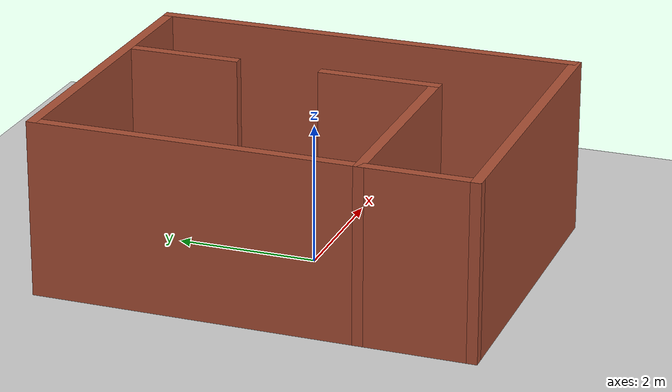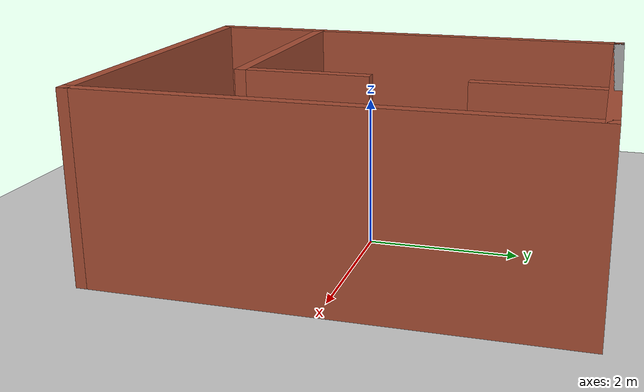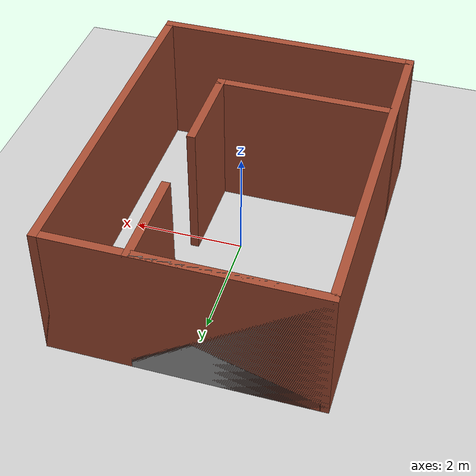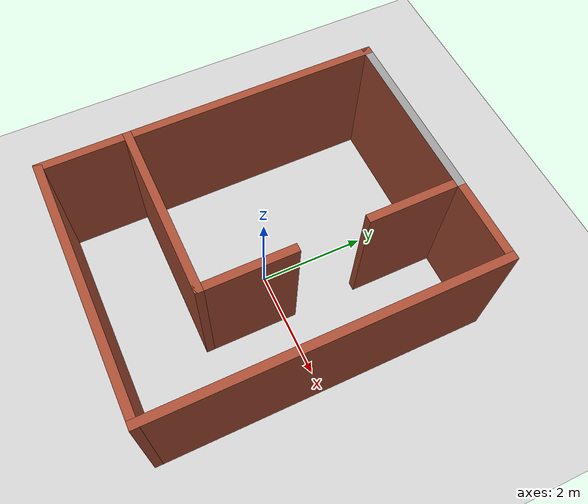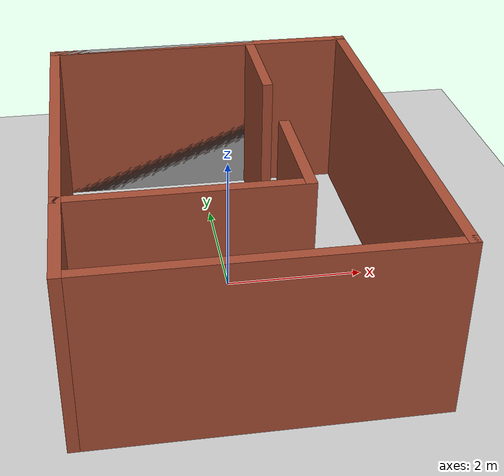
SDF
<sdf version="1.6">
 <world name="default">
  <light name="sun" type="directional">
   <pose>0 0 10 0 -0 0</pose>
   <diffuse>0.8 0.8 0.8 1</diffuse>
   <specular>0.2 0.2 0.2 1</specular>
   <attenuation>
    <range>1000</range>
    <constant>0.9</constant>
    <linear>0.01</linear>
    <quadratic>0.001</quadratic>
   </attenuation>
   <direction>-0.5 0.1 -0.9</direction>
  </light>
  <model name="ground_plane">
   <static>1</static>
   <link name="link">
    <collision name="collision">
     <geometry><plane><normal>0 0 1</normal><size>100 100</size></plane></geometry>
     <surface>
      <contact><collide_bitmask>65535</collide_bitmask></contact>
      <friction><ode><mu>100</mu><mu2>50</mu2></ode></friction>
     </surface>
    </collision>
    <visual name="visual">
     <cast_shadows>0</cast_shadows>
     <geometry><plane><normal>0 0 1</normal><size>100 100</size></plane></geometry>
     <material>
      <script><uri>file://media/materials/scripts/gazebo.material</uri><name>Gazebo/Grey</name></script>
     </material>
    </visual>
   </link>
  </model>
  <gravity>0 0 -9.8</gravity>
  <magnetic_field>6e-06 2.3e-05 -4.2e-05</magnetic_field>
  <atmosphere type="adiabatic"/>
  <physics name="default_physics" default="0" type="ode">
   <max_step_size>0.001</max_step_size>
   <real_time_factor>1</real_time_factor>
   <real_time_update_rate>1000</real_time_update_rate>
  </physics>
  <scene><ambient>0.4 0.4 0.4 1</ambient><background>0.7 0.7 0.7 1</background><shadows>1</shadows></scene>
  <audio><device>default</device></audio>
  <spherical_coordinates>
   <surface_model>EARTH_WGS84</surface_model>
   <latitude_deg>0</latitude_deg>
   <longitude_deg>0</longitude_deg>
   <elevation>0</elevation>
   <heading_deg>0</heading_deg>
  </spherical_coordinates>
  <model name="room">
   <pose>0.010185 0.045329 0 0 -0 0</pose>
   <link name="Wall_0">
    <collision name="Wall_0_Collision">
     <geometry><box><size>4.75 0.15 2.5</size></box></geometry>
     <pose>0 0 1.25 0 -0 0</pose>
    </collision>
    <visual name="Wall_0_Visual">
     <pose>0 0 1.25 0 -0 0</pose>
     <geometry><box><size>4.75 0.15 2.5</size></box></geometry>
     <material>
      <script><uri>file://media/materials/scripts/gazebo.material</uri><name>Gazebo/Bricks</name></script>
      <ambient>1 1 1 1</ambient>
     </material>
     <meta><layer>0</layer></meta>
    </visual>
    <pose>-0 3.05 0 0 -0 0</pose>
   </link>
   <link name="Wall_1">
    <collision name="Wall_1_Collision">
     <geometry><box><size>6.25 0.15 2.5</size></box></geometry>
     <pose>0 0 1.25 0 -0 0</pose>
    </collision>
    <visual name="Wall_1_Visual">
     <pose>0 0 1.25 0 -0 0</pose>
     <geometry><box><size>6.25 0.15 2.5</size></box></geometry>
     <material>
      <script><uri>file://media/materials/scripts/gazebo.material</uri><name>Gazebo/Bricks</name></script>
      <ambient>1 1 1 1</ambient>
     </material>
     <meta><layer>0</layer></meta>
    </visual>
    <pose>2.3 0 0 0 -0 -1.5708</pose>
   </link>
   <link name="Wall_12">
    <collision name="Wall_12_Collision">
     <geometry><box><size>3.25 0.15 2.5</size></box></geometry>
     <pose>0 0 1.25 0 -0 0</pose>
    </collision>
    <visual name="Wall_12_Visual">
     <pose>0 0 1.25 0 -0 0</pose>
     <geometry><box><size>3.25 0.15 2.5</size></box></geometry>
     <material>
      <script><uri>file://media/materials/scripts/gazebo.material</uri><name>Gazebo/Grey</name></script>
      <ambient>1 1 1 1</ambient>
     </material>
     <meta><layer>0</layer></meta>
    </visual>
    <pose>-0.75 3.05 0 0 -0 0</pose>
   </link>
   <link name="Wall_16">
    <collision name="Wall_16_Collision">
     <geometry><box><size>3.25 0.15 2.5</size></box></geometry>
     <pose>0 0 1.25 0 -0 0</pose>
    </collision>
    <visual name="Wall_16_Visual">
     <pose>0 0 1.25 0 -0 0</pose>
     <geometry><box><size>3.25 0.15 2.5</size></box></geometry>
     <material>
      <script><uri>file://media/materials/scripts/gazebo.material</uri><name>Gazebo/Bricks</name></script>
      <ambient>1 1 1 1</ambient>
     </material>
     <meta><layer>0</layer></meta>
    </visual>
    <pose>-0.75 3.05 0 0 -0 0</pose>
   </link>
   <link name="Wall_17">
    <collision name="Wall_17_Collision">
     <geometry><box><size>1.75 0.15 2.5</size></box></geometry>
     <pose>0 0 1.25 0 -0 0</pose>
    </collision>
    <visual name="Wall_17_Visual">
     <pose>0 0 1.25 0 -0 0</pose>
     <geometry><box><size>1.75 0.15 2.5</size></box></geometry>
     <material>
      <script><uri>file://media/materials/scripts/gazebo.material</uri><name>Gazebo/Bricks</name></script>
      <ambient>1 1 1 1</ambient>
     </material>
     <meta><layer>0</layer></meta>
    </visual>
    <pose>0.8 2.25 0 0 -0 -1.5708</pose>
   </link>
   <link name="Wall_19">
    <collision name="Wall_19_Collision">
     <geometry><box><size>1.75 0.15 2.5</size></box></geometry>
     <pose>0 0 1.25 0 -0 0</pose>
    </collision>
    <visual name="Wall_19_Visual">
     <pose>0 0 1.25 0 -0 0</pose>
     <geometry><box><size>1.75 0.15 2.5</size></box></geometry>
     <material>
      <script><uri>file://media/materials/scripts/gazebo.material</uri><name>Gazebo/Bricks</name></script>
      <ambient>1 1 1 1</ambient>
     </material>
     <meta><layer>0</layer></meta>
    </visual>
    <pose>0.8 -0.7 0 0 -0 -1.5708</pose>
   </link>
   <link name="Wall_2">
    <collision name="Wall_2_Collision">
     <geometry><box><size>4.75 0.15 2.5</size></box></geometry>
     <pose>0 0 1.25 0 -0 0</pose>
    </collision>
    <visual name="Wall_2_Visual">
     <pose>0 0 1.25 0 -0 0</pose>
     <geometry><box><size>4.75 0.15 2.5</size></box></geometry>
     <material>
      <script><uri>file://media/materials/scripts/gazebo.material</uri><name>Gazebo/Bricks</name></script>
      <ambient>1 1 1 1</ambient>
     </material>
     <meta><layer>0</layer></meta>
    </visual>
    <pose>-0 -3.05 0 0 -0 3.14159</pose>
   </link>
   <link name="Wall_20">
    <collision name="Wall_20_Collision">
     <geometry><box><size>3.25 0.15 2.5</size></box></geometry>
     <pose>0 0 1.25 0 -0 0</pose>
    </collision>
    <visual name="Wall_20_Visual">
     <pose>0 0 1.25 0 -0 0</pose>
     <geometry><box><size>3.25 0.15 2.5</size></box></geometry>
     <material>
      <script><uri>file://media/materials/scripts/gazebo.material</uri><name>Gazebo/Bricks</name></script>
      <ambient>1 1 1 1</ambient>
     </material>
     <meta><layer>0</layer></meta>
    </visual>
    <pose>-0.75 -1.5 0 0 -0 3.14159</pose>
   </link>
   <link name="Wall_3">
    <collision name="Wall_3_Collision">
     <geometry><box><size>6.25 0.15 2.5</size></box></geometry>
     <pose>0 0 1.25 0 -0 0</pose>
    </collision>
    <visual name="Wall_3_Visual">
     <pose>0 0 1.25 0 -0 0</pose>
     <geometry><box><size>6.25 0.15 2.5</size></box></geometry>
     <material>
      <script><uri>file://media/materials/scripts/gazebo.material</uri><name>Gazebo/Bricks</name></script>
      <ambient>1 1 1 1</ambient>
     </material>
     <meta><layer>0</layer></meta>
    </visual>
    <pose>-2.3 0 0 0 -0 1.5708</pose>
   </link>
   <link name="Wall_8">
    <collision name="Wall_8_Collision">
     <geometry><box><size>3.25 0.15 2.5</size></box></geometry>
     <pose>0 0 1.25 0 -0 0</pose>
    </collision>
    <visual name="Wall_8_Visual">
     <pose>0 0 1.25 0 -0 0</pose>
     <geometry><box><size>3.25 0.15 2.5</size></box></geometry>
     <material>
      <script><uri>file://media/materials/scripts/gazebo.material</uri><name>Gazebo/Grey</name></script>
      <ambient>1 1 1 1</ambient>
     </material>
     <meta><layer>0</layer></meta>
    </visual>
    <pose>-0.75 3.05 0 0 -0 0</pose>
   </link>
   <static>1</static>
  </model>
 </world>
</sdf>
